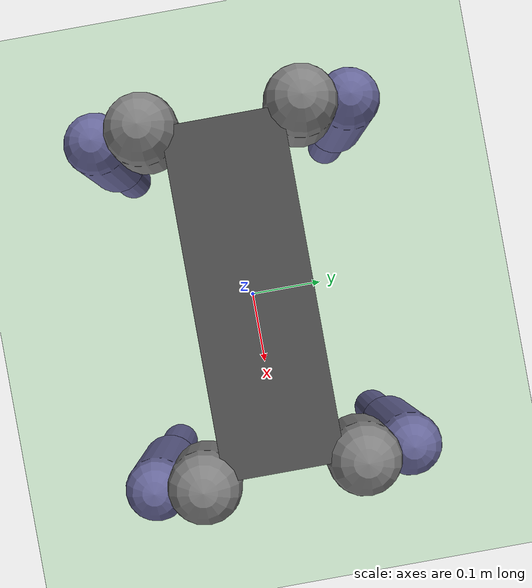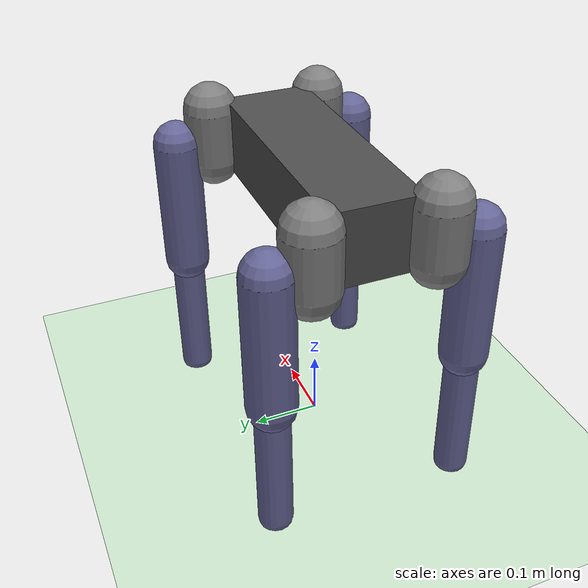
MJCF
<mujoco model="go2_scene">
  <compiler autolimits="true" angle="radian" meshdir="../../urdf/go2_unitree/dae"/>

  <option timestep="0.005" gravity="0 0 -9.81" iterations="50" solver="Newton"/>

  <default>
    <joint damping="0.1" armature="0.01"/>
    <geom condim="3" friction="1 0.005 0.0001"/>
  </default>

  <worldbody>
    <light directional="true" pos="0 0 5" dir="0 0 -1" diffuse="0.8 0.8 0.8" specular="0.2 0.2 0.2"/>
    <geom name="floor" type="plane" size="100 100 0.1" rgba="0.8 0.9 0.8 1" condim="3" friction="1.0 0.005 0.0001"/>

    <!-- GO2 floating base -->
    <body name="base" pos="0 0 0.42">
      <freejoint name="root"/>
      <inertial pos="0.021112 0 -0.005366" mass="6.921"
                diaginertia="0.02448 0.098077 0.107"/>
      <geom type="box" size="0.19 0.065 0.054" pos="0 0 0" rgba="0.3 0.3 0.3 1"/>

      <!-- FL leg -->
      <body name="FL_hip" pos="0.1934 0.0465 0">
        <joint name="FL_hip_joint" type="hinge" axis="1 0 0" range="-1.0472 1.0472" damping="0.5" armature="0.01"/>
        <inertial pos="-0.0054 0.00194 -0.000105" mass="0.678" diaginertia="0.000469246 0.00080749 0.000943748"/>
        <geom type="capsule" size="0.04 0.04" pos="0 0.04 0" rgba="0.5 0.5 0.5 1"/>
        <body name="FL_thigh" pos="0 0.0955 0">
          <joint name="FL_thigh_joint" type="hinge" axis="0 1 0" range="-1.5708 3.4907" damping="0.5" armature="0.01"/>
          <inertial pos="-0.00374 -0.0223 -0.0327" mass="1.152" diaginertia="0.00557918 0.00539517 0.000945938"/>
          <geom type="capsule" size="0.035 0.1" pos="0 0 -0.1065" rgba="0.4 0.4 0.6 1"/>
          <body name="FL_calf" pos="0 0 -0.213">
            <joint name="FL_calf_joint" type="hinge" axis="0 1 0" range="-2.7227 -0.83776" damping="0.5" armature="0.01"/>
            <inertial pos="0.00548 -0.000975 -0.115" mass="0.154" diaginertia="0.000374318 0.000375772 2.5785e-05"/>
            <geom type="capsule" size="0.025 0.1" pos="0 0 -0.1" rgba="0.4 0.4 0.6 1"/>
            <body name="FL_foot" pos="0 0 -0.213">
              <site name="FL_foot_site" pos="0 0 0" size="0.022"/>
              <geom name="FL_foot" type="sphere" size="0.022" rgba="0.2 0.2 0.2 1" condim="6"/>
              <inertial pos="0 0 0" mass="0.04" diaginertia="1e-5 1e-5 1e-5"/>
            </body>
          </body>
        </body>
      </body>

      <!-- FR leg -->
      <body name="FR_hip" pos="0.1934 -0.0465 0">
        <joint name="FR_hip_joint" type="hinge" axis="1 0 0" range="-1.0472 1.0472" damping="0.5" armature="0.01"/>
        <inertial pos="-0.0054 -0.00194 -0.000105" mass="0.678" diaginertia="0.000469246 0.00080749 0.000943748"/>
        <geom type="capsule" size="0.04 0.04" pos="0 -0.04 0" rgba="0.5 0.5 0.5 1"/>
        <body name="FR_thigh" pos="0 -0.0955 0">
          <joint name="FR_thigh_joint" type="hinge" axis="0 1 0" range="-1.5708 3.4907" damping="0.5" armature="0.01"/>
          <inertial pos="-0.00374 0.0223 -0.0327" mass="1.152" diaginertia="0.00557918 0.00539517 0.000945938"/>
          <geom type="capsule" size="0.035 0.1" pos="0 0 -0.1065" rgba="0.4 0.4 0.6 1"/>
          <body name="FR_calf" pos="0 0 -0.213">
            <joint name="FR_calf_joint" type="hinge" axis="0 1 0" range="-2.7227 -0.83776" damping="0.5" armature="0.01"/>
            <inertial pos="0.00548 0.000975 -0.115" mass="0.154" diaginertia="0.000374318 0.000375772 2.5785e-05"/>
            <geom type="capsule" size="0.025 0.1" pos="0 0 -0.1" rgba="0.4 0.4 0.6 1"/>
            <body name="FR_foot" pos="0 0 -0.213">
              <site name="FR_foot_site" pos="0 0 0" size="0.022"/>
              <geom name="FR_foot" type="sphere" size="0.022" rgba="0.2 0.2 0.2 1" condim="6"/>
              <inertial pos="0 0 0" mass="0.04" diaginertia="1e-5 1e-5 1e-5"/>
            </body>
          </body>
        </body>
      </body>

      <!-- RL leg -->
      <body name="RL_hip" pos="-0.1934 0.0465 0">
        <joint name="RL_hip_joint" type="hinge" axis="1 0 0" range="-1.0472 1.0472" damping="0.5" armature="0.01"/>
        <inertial pos="0.0054 0.00194 -0.000105" mass="0.678" diaginertia="0.000469246 0.00080749 0.000943748"/>
        <geom type="capsule" size="0.04 0.04" pos="0 0.04 0" rgba="0.5 0.5 0.5 1"/>
        <body name="RL_thigh" pos="0 0.0955 0">
          <joint name="RL_thigh_joint" type="hinge" axis="0 1 0" range="-0.5236 4.5379" damping="0.5" armature="0.01"/>
          <inertial pos="-0.00374 -0.0223 -0.0327" mass="1.152" diaginertia="0.00557918 0.00539517 0.000945938"/>
          <geom type="capsule" size="0.035 0.1" pos="0 0 -0.1065" rgba="0.4 0.4 0.6 1"/>
          <body name="RL_calf" pos="0 0 -0.213">
            <joint name="RL_calf_joint" type="hinge" axis="0 1 0" range="-2.7227 -0.83776" damping="0.5" armature="0.01"/>
            <inertial pos="0.00548 -0.000975 -0.115" mass="0.154" diaginertia="0.000374318 0.000375772 2.5785e-05"/>
            <geom type="capsule" size="0.025 0.1" pos="0 0 -0.1" rgba="0.4 0.4 0.6 1"/>
            <body name="RL_foot" pos="0 0 -0.213">
              <site name="RL_foot_site" pos="0 0 0" size="0.022"/>
              <geom name="RL_foot" type="sphere" size="0.022" rgba="0.2 0.2 0.2 1" condim="6"/>
              <inertial pos="0 0 0" mass="0.04" diaginertia="1e-5 1e-5 1e-5"/>
            </body>
          </body>
        </body>
      </body>

      <!-- RR leg -->
      <body name="RR_hip" pos="-0.1934 -0.0465 0">
        <joint name="RR_hip_joint" type="hinge" axis="1 0 0" range="-1.0472 1.0472" damping="0.5" armature="0.01"/>
        <inertial pos="0.0054 -0.00194 -0.000105" mass="0.678" diaginertia="0.000469246 0.00080749 0.000943748"/>
        <geom type="capsule" size="0.04 0.04" pos="0 -0.04 0" rgba="0.5 0.5 0.5 1"/>
        <body name="RR_thigh" pos="0 -0.0955 0">
          <joint name="RR_thigh_joint" type="hinge" axis="0 1 0" range="-0.5236 4.5379" damping="0.5" armature="0.01"/>
          <inertial pos="-0.00374 0.0223 -0.0327" mass="1.152" diaginertia="0.00557918 0.00539517 0.000945938"/>
          <geom type="capsule" size="0.035 0.1" pos="0 0 -0.1065" rgba="0.4 0.4 0.6 1"/>
          <body name="RR_calf" pos="0 0 -0.213">
            <joint name="RR_calf_joint" type="hinge" axis="0 1 0" range="-2.7227 -0.83776" damping="0.5" armature="0.01"/>
            <inertial pos="0.00548 0.000975 -0.115" mass="0.154" diaginertia="0.000374318 0.000375772 2.5785e-05"/>
            <geom type="capsule" size="0.025 0.1" pos="0 0 -0.1" rgba="0.4 0.4 0.6 1"/>
            <body name="RR_foot" pos="0 0 -0.213">
              <site name="RR_foot_site" pos="0 0 0" size="0.022"/>
              <geom name="RR_foot" type="sphere" size="0.022" rgba="0.2 0.2 0.2 1" condim="6"/>
              <inertial pos="0 0 0" mass="0.04" diaginertia="1e-5 1e-5 1e-5"/>
            </body>
          </body>
        </body>
      </body>

    </body>
  </worldbody>

  <actuator>
    <!-- hip joints: kp=20, kd=0.5 -->
    <position name="FL_hip"   joint="FL_hip_joint"   kp="20" kv="0.5" ctrlrange="-1.0472 1.0472"/>
    <position name="FR_hip"   joint="FR_hip_joint"   kp="20" kv="0.5" ctrlrange="-1.0472 1.0472"/>
    <position name="RL_hip"   joint="RL_hip_joint"   kp="20" kv="0.5" ctrlrange="-1.0472 1.0472"/>
    <position name="RR_hip"   joint="RR_hip_joint"   kp="20" kv="0.5" ctrlrange="-1.0472 1.0472"/>
    <!-- thigh joints -->
    <position name="FL_thigh" joint="FL_thigh_joint" kp="20" kv="0.5" ctrlrange="-1.5708 3.4907"/>
    <position name="FR_thigh" joint="FR_thigh_joint" kp="20" kv="0.5" ctrlrange="-1.5708 3.4907"/>
    <position name="RL_thigh" joint="RL_thigh_joint" kp="20" kv="0.5" ctrlrange="-0.5236 4.5379"/>
    <position name="RR_thigh" joint="RR_thigh_joint" kp="20" kv="0.5" ctrlrange="-0.5236 4.5379"/>
    <!-- calf joints -->
    <position name="FL_calf"  joint="FL_calf_joint"  kp="20" kv="0.5" ctrlrange="-2.7227 -0.83776"/>
    <position name="FR_calf"  joint="FR_calf_joint"  kp="20" kv="0.5" ctrlrange="-2.7227 -0.83776"/>
    <position name="RL_calf"  joint="RL_calf_joint"  kp="20" kv="0.5" ctrlrange="-2.7227 -0.83776"/>
    <position name="RR_calf"  joint="RR_calf_joint"  kp="20" kv="0.5" ctrlrange="-2.7227 -0.83776"/>
  </actuator>

  <sensor>
    <framequat  name="orientation" objtype="body" objname="base"/>
    <framelinvel name="lin_vel"   objtype="body" objname="base"/>
    <frameangvel name="ang_vel"   objtype="body" objname="base"/>
    <jointpos   name="FL_hip_pos"   joint="FL_hip_joint"/>
    <jointpos   name="FL_thigh_pos" joint="FL_thigh_joint"/>
    <jointpos   name="FL_calf_pos"  joint="FL_calf_joint"/>
    <jointpos   name="FR_hip_pos"   joint="FR_hip_joint"/>
    <jointpos   name="FR_thigh_pos" joint="FR_thigh_joint"/>
    <jointpos   name="FR_calf_pos"  joint="FR_calf_joint"/>
    <jointpos   name="RL_hip_pos"   joint="RL_hip_joint"/>
    <jointpos   name="RL_thigh_pos" joint="RL_thigh_joint"/>
    <jointpos   name="RL_calf_pos"  joint="RL_calf_joint"/>
    <jointpos   name="RR_hip_pos"   joint="RR_hip_joint"/>
    <jointpos   name="RR_thigh_pos" joint="RR_thigh_joint"/>
    <jointpos   name="RR_calf_pos"  joint="RR_calf_joint"/>
    <jointvel   name="FL_hip_vel"   joint="FL_hip_joint"/>
    <jointvel   name="FL_thigh_vel" joint="FL_thigh_joint"/>
    <jointvel   name="FL_calf_vel"  joint="FL_calf_joint"/>
    <jointvel   name="FR_hip_vel"   joint="FR_hip_joint"/>
    <jointvel   name="FR_thigh_vel" joint="FR_thigh_joint"/>
    <jointvel   name="FR_calf_vel"  joint="FR_calf_joint"/>
    <jointvel   name="RL_hip_vel"   joint="RL_hip_joint"/>
    <jointvel   name="RL_thigh_vel" joint="RL_thigh_joint"/>
    <jointvel   name="RL_calf_vel"  joint="RL_calf_joint"/>
    <jointvel   name="RR_hip_vel"   joint="RR_hip_joint"/>
    <jointvel   name="RR_thigh_vel" joint="RR_thigh_joint"/>
    <jointvel   name="RR_calf_vel"  joint="RR_calf_joint"/>
    <touch name="FL_contact" site="FL_foot_site"/>
    <touch name="FR_contact" site="FR_foot_site"/>
    <touch name="RL_contact" site="RL_foot_site"/>
    <touch name="RR_contact" site="RR_foot_site"/>
  </sensor>

</mujoco>
